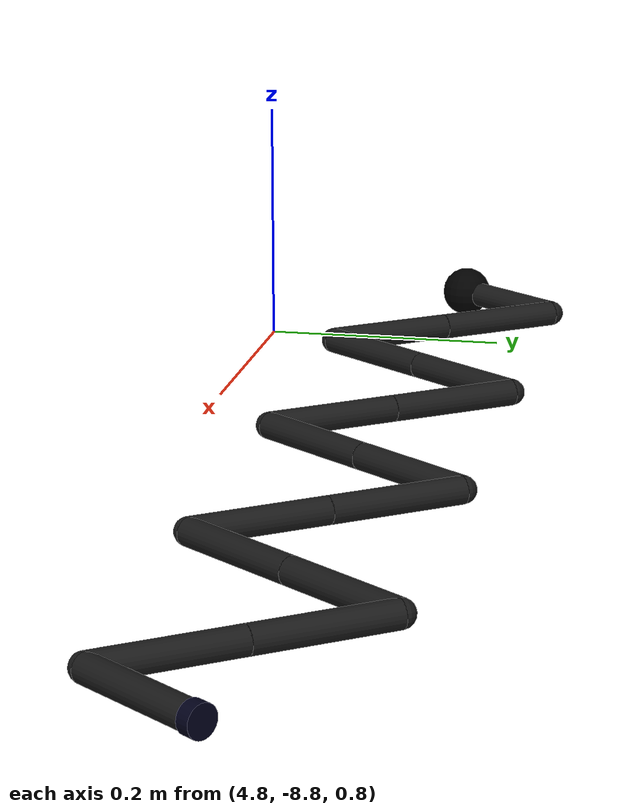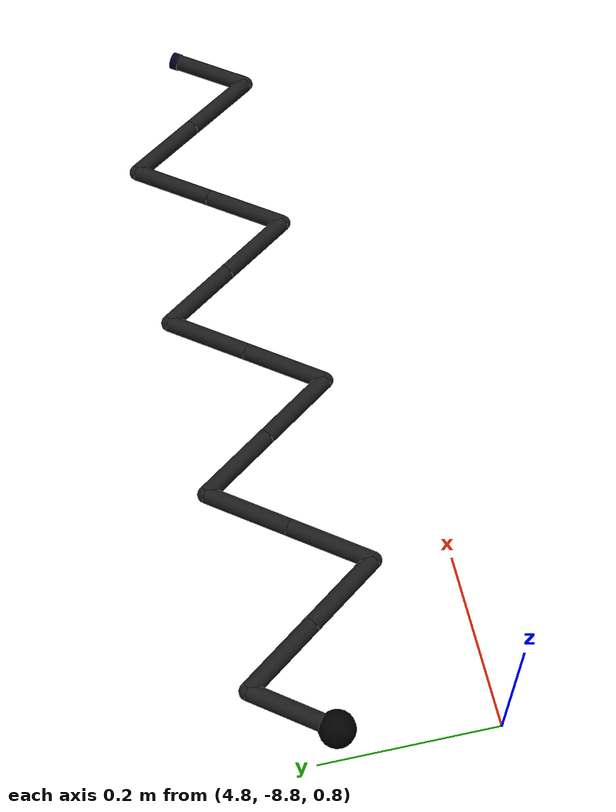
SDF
<sdf version="1.6">
 <world name="SRC_finals">
  <model name="solar_panel_cable">
   <self_collide>true</self_collide>
   <pose>4.8170462002983
    -8.62441469592094
    0.85
    0
    0
    6.123233995736766e-17</pose>
   <link name="link_0">
    <inertial><mass>0.05</mass><inertia><ixx>0.0001</ixx><iyy>0.0001</iyy><izz>0.0001</izz></inertia></inertial>
    <visual name="visual">
     <geometry><sphere><radius>0.02</radius></sphere></geometry>
     <material>
      <ambient>0 0 0 1</ambient>
      <emissive>0 0 0 1</emissive>
      <diffuse>0 0 0 1</diffuse>
      <specular>1 1 1 1</specular>
     </material>
    </visual>
   </link>
   <link name="link_1">
    <pose>0.0 0 0 0 1.5707963267948966 0.9424777960769379</pose>
    <inertial>
     <pose>0 0 0.05 0 0 0</pose>
     <mass>0.05</mass>
     <inertia><ixx>0.0001</ixx><iyy>0.0001</iyy><izz>0.0001</izz></inertia>
    </inertial>
    <collision name="cylinder">
     <pose>0 0 0.05 0 0 0</pose>
     <geometry><cylinder><length>0.1</length><radius>0.01</radius></cylinder></geometry>
     <surface>
      <contact><ode><kp>1e5</kp><kd>1</kd><max_vel>0.1</max_vel><min_depth>0.0015</min_depth></ode></contact>
      <friction><ode><mu>1.0</mu><mu2>1.0</mu2></ode></friction>
     </surface>
    </collision>
    <collision name="sphere">
     <geometry><sphere><radius>0.01</radius></sphere></geometry>
     <surface>
      <contact><ode><kp>1e5</kp><kd>1</kd><max_vel>0.1</max_vel><min_depth>0.0015</min_depth></ode></contact>
      <friction><ode><mu>1.0</mu><mu2>1.0</mu2></ode></friction>
     </surface>
    </collision>
    <visual name="cylinder">
     <pose>0 0 0.05 0 0 0</pose>
     <geometry><cylinder><length>0.1</length><radius>0.01</radius></cylinder></geometry>
     <material>
      <ambient>0 0 0 1</ambient>
      <emissive>0 0 0 1</emissive>
      <diffuse>0.1 0.1 0.1 1</diffuse>
      <specular>1 1 1 1</specular>
     </material>
    </visual>
    <visual name="sphere">
     <geometry><sphere><radius>0.01</radius></sphere></geometry>
     <material>
      <ambient>0 0 0 1</ambient>
      <emissive>0 0 0 1</emissive>
      <diffuse>0.1 0.1 0.1 1</diffuse>
      <specular>1 1 1 1</specular>
     </material>
    </visual>
   </link>
   <joint name="joint_1" type="universal">
    <child>link_1</child>
    <parent>link_0</parent>
    <axis>
     <xyz>0 1 0</xyz>
     <limit><lower>-1.5707963267948966</lower><upper>1.5707963267948966</upper></limit>
    </axis>
    <axis2>
     <xyz>-1 0 0</xyz>
     <limit><lower>-1.5707963267948966</lower><upper>1.5707963267948966</upper></limit>
    </axis2>
    <physics><ode><cfm_damping>1</cfm_damping></ode></physics>
   </joint>
   <link name="link_2">
    <pose>0.058778525229247314 0.08090169943749476 0 0 1.5707963267948966 -0.9424777960769379</pose>
    <inertial>
     <pose>0 0 0.05 0 0 0</pose>
     <mass>0.05</mass>
     <inertia><ixx>0.0001</ixx><iyy>0.0001</iyy><izz>0.0001</izz></inertia>
    </inertial>
    <collision name="cylinder">
     <pose>0 0 0.05 0 0 0</pose>
     <geometry><cylinder><length>0.1</length><radius>0.01</radius></cylinder></geometry>
     <surface>
      <contact><ode><kp>1e5</kp><kd>1</kd><max_vel>0.1</max_vel><min_depth>0.0015</min_depth></ode></contact>
      <friction><ode><mu>1.0</mu><mu2>1.0</mu2></ode></friction>
     </surface>
    </collision>
    <collision name="sphere">
     <geometry><sphere><radius>0.01</radius></sphere></geometry>
     <surface>
      <contact><ode><kp>1e5</kp><kd>1</kd><max_vel>0.1</max_vel><min_depth>0.0015</min_depth></ode></contact>
      <friction><ode><mu>1.0</mu><mu2>1.0</mu2></ode></friction>
     </surface>
    </collision>
    <visual name="cylinder">
     <pose>0 0 0.05 0 0 0</pose>
     <geometry><cylinder><length>0.1</length><radius>0.01</radius></cylinder></geometry>
     <material>
      <ambient>0 0 0 1</ambient>
      <emissive>0 0 0 1</emissive>
      <diffuse>0.1 0.1 0.1 1</diffuse>
      <specular>1 1 1 1</specular>
     </material>
    </visual>
    <visual name="sphere">
     <geometry><sphere><radius>0.01</radius></sphere></geometry>
     <material>
      <ambient>0 0 0 1</ambient>
      <emissive>0 0 0 1</emissive>
      <diffuse>0.1 0.1 0.1 1</diffuse>
      <specular>1 1 1 1</specular>
     </material>
    </visual>
   </link>
   <joint name="joint_2" type="universal">
    <child>link_2</child>
    <parent>link_1</parent>
    <axis>
     <xyz>0 1 0</xyz>
     <limit><lower>-1.5707963267948966</lower><upper>1.5707963267948966</upper></limit>
    </axis>
    <axis2>
     <xyz>-1 0 0</xyz>
     <limit><lower>-1.5707963267948966</lower><upper>1.5707963267948966</upper></limit>
    </axis2>
    <physics><ode><cfm_damping>1</cfm_damping></ode></physics>
   </joint>
   <link name="link_3">
    <pose>0.11755705045849463 0 0 0 1.5707963267948966 -0.9424777960769379</pose>
    <inertial>
     <pose>0 0 0.05 0 0 0</pose>
     <mass>0.05</mass>
     <inertia><ixx>0.0001</ixx><iyy>0.0001</iyy><izz>0.0001</izz></inertia>
    </inertial>
    <collision name="cylinder">
     <pose>0 0 0.05 0 0 0</pose>
     <geometry><cylinder><length>0.1</length><radius>0.01</radius></cylinder></geometry>
     <surface>
      <contact><ode><kp>1e5</kp><kd>1</kd><max_vel>0.1</max_vel><min_depth>0.0015</min_depth></ode></contact>
      <friction><ode><mu>1.0</mu><mu2>1.0</mu2></ode></friction>
     </surface>
    </collision>
    <collision name="sphere">
     <geometry><sphere><radius>0.01</radius></sphere></geometry>
     <surface>
      <contact><ode><kp>1e5</kp><kd>1</kd><max_vel>0.1</max_vel><min_depth>0.0015</min_depth></ode></contact>
      <friction><ode><mu>1.0</mu><mu2>1.0</mu2></ode></friction>
     </surface>
    </collision>
    <visual name="cylinder">
     <pose>0 0 0.05 0 0 0</pose>
     <geometry><cylinder><length>0.1</length><radius>0.01</radius></cylinder></geometry>
     <material>
      <ambient>0 0 0 1</ambient>
      <emissive>0 0 0 1</emissive>
      <diffuse>0.1 0.1 0.1 1</diffuse>
      <specular>1 1 1 1</specular>
     </material>
    </visual>
    <visual name="sphere">
     <geometry><sphere><radius>0.01</radius></sphere></geometry>
     <material>
      <ambient>0 0 0 1</ambient>
      <emissive>0 0 0 1</emissive>
      <diffuse>0.1 0.1 0.1 1</diffuse>
      <specular>1 1 1 1</specular>
     </material>
    </visual>
   </link>
   <joint name="joint_3" type="universal">
    <child>link_3</child>
    <parent>link_2</parent>
    <axis>
     <xyz>0 1 0</xyz>
     <limit><lower>-1.5707963267948966</lower><upper>1.5707963267948966</upper></limit>
    </axis>
    <axis2>
     <xyz>-1 0 0</xyz>
     <limit><lower>-1.5707963267948966</lower><upper>1.5707963267948966</upper></limit>
    </axis2>
    <physics><ode><cfm_damping>1</cfm_damping></ode></physics>
   </joint>
   <link name="link_4">
    <pose>0.17633557568774197 -0.08090169943749476 0 0 1.5707963267948966 0.9424777960769379</pose>
    <inertial>
     <pose>0 0 0.05 0 0 0</pose>
     <mass>0.05</mass>
     <inertia><ixx>0.0001</ixx><iyy>0.0001</iyy><izz>0.0001</izz></inertia>
    </inertial>
    <collision name="cylinder">
     <pose>0 0 0.05 0 0 0</pose>
     <geometry><cylinder><length>0.1</length><radius>0.01</radius></cylinder></geometry>
     <surface>
      <contact><ode><kp>1e5</kp><kd>1</kd><max_vel>0.1</max_vel><min_depth>0.0015</min_depth></ode></contact>
      <friction><ode><mu>1.0</mu><mu2>1.0</mu2></ode></friction>
     </surface>
    </collision>
    <collision name="sphere">
     <geometry><sphere><radius>0.01</radius></sphere></geometry>
     <surface>
      <contact><ode><kp>1e5</kp><kd>1</kd><max_vel>0.1</max_vel><min_depth>0.0015</min_depth></ode></contact>
      <friction><ode><mu>1.0</mu><mu2>1.0</mu2></ode></friction>
     </surface>
    </collision>
    <visual name="cylinder">
     <pose>0 0 0.05 0 0 0</pose>
     <geometry><cylinder><length>0.1</length><radius>0.01</radius></cylinder></geometry>
     <material>
      <ambient>0 0 0 1</ambient>
      <emissive>0 0 0 1</emissive>
      <diffuse>0.1 0.1 0.1 1</diffuse>
      <specular>1 1 1 1</specular>
     </material>
    </visual>
    <visual name="sphere">
     <geometry><sphere><radius>0.01</radius></sphere></geometry>
     <material>
      <ambient>0 0 0 1</ambient>
      <emissive>0 0 0 1</emissive>
      <diffuse>0.1 0.1 0.1 1</diffuse>
      <specular>1 1 1 1</specular>
     </material>
    </visual>
   </link>
   <joint name="joint_4" type="universal">
    <child>link_4</child>
    <parent>link_3</parent>
    <axis>
     <xyz>0 1 0</xyz>
     <limit><lower>-1.5707963267948966</lower><upper>1.5707963267948966</upper></limit>
    </axis>
    <axis2>
     <xyz>-1 0 0</xyz>
     <limit><lower>-1.5707963267948966</lower><upper>1.5707963267948966</upper></limit>
    </axis2>
    <physics><ode><cfm_damping>1</cfm_damping></ode></physics>
   </joint>
   <link name="link_5">
    <pose>0.23511410091698925 0 0 0 1.5707963267948966 0.9424777960769379</pose>
    <inertial>
     <pose>0 0 0.05 0 0 0</pose>
     <mass>0.05</mass>
     <inertia><ixx>0.0001</ixx><iyy>0.0001</iyy><izz>0.0001</izz></inertia>
    </inertial>
    <collision name="cylinder">
     <pose>0 0 0.05 0 0 0</pose>
     <geometry><cylinder><length>0.1</length><radius>0.01</radius></cylinder></geometry>
     <surface>
      <contact><ode><kp>1e5</kp><kd>1</kd><max_vel>0.1</max_vel><min_depth>0.0015</min_depth></ode></contact>
      <friction><ode><mu>1.0</mu><mu2>1.0</mu2></ode></friction>
     </surface>
    </collision>
    <collision name="sphere">
     <geometry><sphere><radius>0.01</radius></sphere></geometry>
     <surface>
      <contact><ode><kp>1e5</kp><kd>1</kd><max_vel>0.1</max_vel><min_depth>0.0015</min_depth></ode></contact>
      <friction><ode><mu>1.0</mu><mu2>1.0</mu2></ode></friction>
     </surface>
    </collision>
    <visual name="cylinder">
     <pose>0 0 0.05 0 0 0</pose>
     <geometry><cylinder><length>0.1</length><radius>0.01</radius></cylinder></geometry>
     <material>
      <ambient>0 0 0 1</ambient>
      <emissive>0 0 0 1</emissive>
      <diffuse>0.1 0.1 0.1 1</diffuse>
      <specular>1 1 1 1</specular>
     </material>
    </visual>
    <visual name="sphere">
     <geometry><sphere><radius>0.01</radius></sphere></geometry>
     <material>
      <ambient>0 0 0 1</ambient>
      <emissive>0 0 0 1</emissive>
      <diffuse>0.1 0.1 0.1 1</diffuse>
      <specular>1 1 1 1</specular>
     </material>
    </visual>
   </link>
   <joint name="joint_5" type="universal">
    <child>link_5</child>
    <parent>link_4</parent>
    <axis>
     <xyz>0 1 0</xyz>
     <limit><lower>-1.5707963267948966</lower><upper>1.5707963267948966</upper></limit>
    </axis>
    <axis2>
     <xyz>-1 0 0</xyz>
     <limit><lower>-1.5707963267948966</lower><upper>1.5707963267948966</upper></limit>
    </axis2>
    <physics><ode><cfm_damping>1</cfm_damping></ode></physics>
   </joint>
   <link name="link_6">
    <pose>0.29389262614623657 0.08090169943749476 0 0 1.5707963267948966 -0.9424777960769379</pose>
    <inertial>
     <pose>0 0 0.05 0 0 0</pose>
     <mass>0.05</mass>
     <inertia><ixx>0.0001</ixx><iyy>0.0001</iyy><izz>0.0001</izz></inertia>
    </inertial>
    <collision name="cylinder">
     <pose>0 0 0.05 0 0 0</pose>
     <geometry><cylinder><length>0.1</length><radius>0.01</radius></cylinder></geometry>
     <surface>
      <contact><ode><kp>1e5</kp><kd>1</kd><max_vel>0.1</max_vel><min_depth>0.0015</min_depth></ode></contact>
      <friction><ode><mu>1.0</mu><mu2>1.0</mu2></ode></friction>
     </surface>
    </collision>
    <collision name="sphere">
     <geometry><sphere><radius>0.01</radius></sphere></geometry>
     <surface>
      <contact><ode><kp>1e5</kp><kd>1</kd><max_vel>0.1</max_vel><min_depth>0.0015</min_depth></ode></contact>
      <friction><ode><mu>1.0</mu><mu2>1.0</mu2></ode></friction>
     </surface>
    </collision>
    <visual name="cylinder">
     <pose>0 0 0.05 0 0 0</pose>
     <geometry><cylinder><length>0.1</length><radius>0.01</radius></cylinder></geometry>
     <material>
      <ambient>0 0 0 1</ambient>
      <emissive>0 0 0 1</emissive>
      <diffuse>0.1 0.1 0.1 1</diffuse>
      <specular>1 1 1 1</specular>
     </material>
    </visual>
    <visual name="sphere">
     <geometry><sphere><radius>0.01</radius></sphere></geometry>
     <material>
      <ambient>0 0 0 1</ambient>
      <emissive>0 0 0 1</emissive>
      <diffuse>0.1 0.1 0.1 1</diffuse>
      <specular>1 1 1 1</specular>
     </material>
    </visual>
   </link>
   <joint name="joint_6" type="universal">
    <child>link_6</child>
    <parent>link_5</parent>
    <axis>
     <xyz>0 1 0</xyz>
     <limit><lower>-1.5707963267948966</lower><upper>1.5707963267948966</upper></limit>
    </axis>
    <axis2>
     <xyz>-1 0 0</xyz>
     <limit><lower>-1.5707963267948966</lower><upper>1.5707963267948966</upper></limit>
    </axis2>
    <physics><ode><cfm_damping>1</cfm_damping></ode></physics>
   </joint>
   <link name="link_7">
    <pose>0.35267115137548394 0 0 0 1.5707963267948966 -0.9424777960769379</pose>
    <inertial>
     <pose>0 0 0.05 0 0 0</pose>
     <mass>0.05</mass>
     <inertia><ixx>0.0001</ixx><iyy>0.0001</iyy><izz>0.0001</izz></inertia>
    </inertial>
    <collision name="cylinder">
     <pose>0 0 0.05 0 0 0</pose>
     <geometry><cylinder><length>0.1</length><radius>0.01</radius></cylinder></geometry>
     <surface>
      <contact><ode><kp>1e5</kp><kd>1</kd><max_vel>0.1</max_vel><min_depth>0.0015</min_depth></ode></contact>
      <friction><ode><mu>1.0</mu><mu2>1.0</mu2></ode></friction>
     </surface>
    </collision>
    <collision name="sphere">
     <geometry><sphere><radius>0.01</radius></sphere></geometry>
     <surface>
      <contact><ode><kp>1e5</kp><kd>1</kd><max_vel>0.1</max_vel><min_depth>0.0015</min_depth></ode></contact>
      <friction><ode><mu>1.0</mu><mu2>1.0</mu2></ode></friction>
     </surface>
    </collision>
    <visual name="cylinder">
     <pose>0 0 0.05 0 0 0</pose>
     <geometry><cylinder><length>0.1</length><radius>0.01</radius></cylinder></geometry>
     <material>
      <ambient>0 0 0 1</ambient>
      <emissive>0 0 0 1</emissive>
      <diffuse>0.1 0.1 0.1 1</diffuse>
      <specular>1 1 1 1</specular>
     </material>
    </visual>
    <visual name="sphere">
     <geometry><sphere><radius>0.01</radius></sphere></geometry>
     <material>
      <ambient>0 0 0 1</ambient>
      <emissive>0 0 0 1</emissive>
      <diffuse>0.1 0.1 0.1 1</diffuse>
      <specular>1 1 1 1</specular>
     </material>
    </visual>
   </link>
   <joint name="joint_7" type="universal">
    <child>link_7</child>
    <parent>link_6</parent>
    <axis>
     <xyz>0 1 0</xyz>
     <limit><lower>-1.5707963267948966</lower><upper>1.5707963267948966</upper></limit>
    </axis>
    <axis2>
     <xyz>-1 0 0</xyz>
     <limit><lower>-1.5707963267948966</lower><upper>1.5707963267948966</upper></limit>
    </axis2>
    <physics><ode><cfm_damping>1</cfm_damping></ode></physics>
   </joint>
   <link name="link_8">
    <pose>0.41144967660473125 -0.08090169943749476 0 0 1.5707963267948966 0.9424777960769379</pose>
    <inertial>
     <pose>0 0 0.05 0 0 0</pose>
     <mass>0.05</mass>
     <inertia><ixx>0.0001</ixx><iyy>0.0001</iyy><izz>0.0001</izz></inertia>
    </inertial>
    <collision name="cylinder">
     <pose>0 0 0.05 0 0 0</pose>
     <geometry><cylinder><length>0.1</length><radius>0.01</radius></cylinder></geometry>
     <surface>
      <contact><ode><kp>1e5</kp><kd>1</kd><max_vel>0.1</max_vel><min_depth>0.0015</min_depth></ode></contact>
      <friction><ode><mu>1.0</mu><mu2>1.0</mu2></ode></friction>
     </surface>
    </collision>
    <collision name="sphere">
     <geometry><sphere><radius>0.01</radius></sphere></geometry>
     <surface>
      <contact><ode><kp>1e5</kp><kd>1</kd><max_vel>0.1</max_vel><min_depth>0.0015</min_depth></ode></contact>
      <friction><ode><mu>1.0</mu><mu2>1.0</mu2></ode></friction>
     </surface>
    </collision>
    <visual name="cylinder">
     <pose>0 0 0.05 0 0 0</pose>
     <geometry><cylinder><length>0.1</length><radius>0.01</radius></cylinder></geometry>
     <material>
      <ambient>0 0 0 1</ambient>
      <emissive>0 0 0 1</emissive>
      <diffuse>0.1 0.1 0.1 1</diffuse>
      <specular>1 1 1 1</specular>
     </material>
    </visual>
    <visual name="sphere">
     <geometry><sphere><radius>0.01</radius></sphere></geometry>
     <material>
      <ambient>0 0 0 1</ambient>
      <emissive>0 0 0 1</emissive>
      <diffuse>0.1 0.1 0.1 1</diffuse>
      <specular>1 1 1 1</specular>
     </material>
    </visual>
   </link>
   <joint name="joint_8" type="universal">
    <child>link_8</child>
    <parent>link_7</parent>
    <axis>
     <xyz>0 1 0</xyz>
     <limit><lower>-1.5707963267948966</lower><upper>1.5707963267948966</upper></limit>
    </axis>
    <axis2>
     <xyz>-1 0 0</xyz>
     <limit><lower>-1.5707963267948966</lower><upper>1.5707963267948966</upper></limit>
    </axis2>
    <physics><ode><cfm_damping>1</cfm_damping></ode></physics>
   </joint>
   <link name="link_9">
    <pose>0.4702282018339785 0 0 0 1.5707963267948966 0.9424777960769379</pose>
    <inertial>
     <pose>0 0 0.05 0 0 0</pose>
     <mass>0.05</mass>
     <inertia><ixx>0.0001</ixx><iyy>0.0001</iyy><izz>0.0001</izz></inertia>
    </inertial>
    <collision name="cylinder">
     <pose>0 0 0.05 0 0 0</pose>
     <geometry><cylinder><length>0.1</length><radius>0.01</radius></cylinder></geometry>
     <surface>
      <contact><ode><kp>1e5</kp><kd>1</kd><max_vel>0.1</max_vel><min_depth>0.0015</min_depth></ode></contact>
      <friction><ode><mu>1.0</mu><mu2>1.0</mu2></ode></friction>
     </surface>
    </collision>
    <collision name="sphere">
     <geometry><sphere><radius>0.01</radius></sphere></geometry>
     <surface>
      <contact><ode><kp>1e5</kp><kd>1</kd><max_vel>0.1</max_vel><min_depth>0.0015</min_depth></ode></contact>
      <friction><ode><mu>1.0</mu><mu2>1.0</mu2></ode></friction>
     </surface>
    </collision>
    <visual name="cylinder">
     <pose>0 0 0.05 0 0 0</pose>
     <geometry><cylinder><length>0.1</length><radius>0.01</radius></cylinder></geometry>
     <material>
      <ambient>0 0 0 1</ambient>
      <emissive>0 0 0 1</emissive>
      <diffuse>0.1 0.1 0.1 1</diffuse>
      <specular>1 1 1 1</specular>
     </material>
    </visual>
    <visual name="sphere">
     <geometry><sphere><radius>0.01</radius></sphere></geometry>
     <material>
      <ambient>0 0 0 1</ambient>
      <emissive>0 0 0 1</emissive>
      <diffuse>0.1 0.1 0.1 1</diffuse>
      <specular>1 1 1 1</specular>
     </material>
    </visual>
   </link>
   <joint name="joint_9" type="universal">
    <child>link_9</child>
    <parent>link_8</parent>
    <axis>
     <xyz>0 1 0</xyz>
     <limit><lower>-1.5707963267948966</lower><upper>1.5707963267948966</upper></limit>
    </axis>
    <axis2>
     <xyz>-1 0 0</xyz>
     <limit><lower>-1.5707963267948966</lower><upper>1.5707963267948966</upper></limit>
    </axis2>
    <physics><ode><cfm_damping>1</cfm_damping></ode></physics>
   </joint>
   <link name="link_10">
    <pose>0.5290067270632258 0.08090169943749476 0 0 1.5707963267948966 -0.9424777960769379</pose>
    <inertial>
     <pose>0 0 0.05 0 0 0</pose>
     <mass>0.05</mass>
     <inertia><ixx>0.0001</ixx><iyy>0.0001</iyy><izz>0.0001</izz></inertia>
    </inertial>
    <collision name="cylinder">
     <pose>0 0 0.05 0 0 0</pose>
     <geometry><cylinder><length>0.1</length><radius>0.01</radius></cylinder></geometry>
     <surface>
      <contact><ode><kp>1e5</kp><kd>1</kd><max_vel>0.1</max_vel><min_depth>0.0015</min_depth></ode></contact>
      <friction><ode><mu>1.0</mu><mu2>1.0</mu2></ode></friction>
     </surface>
    </collision>
    <collision name="sphere">
     <geometry><sphere><radius>0.01</radius></sphere></geometry>
     <surface>
      <contact><ode><kp>1e5</kp><kd>1</kd><max_vel>0.1</max_vel><min_depth>0.0015</min_depth></ode></contact>
      <friction><ode><mu>1.0</mu><mu2>1.0</mu2></ode></friction>
     </surface>
    </collision>
    <visual name="cylinder">
     <pose>0 0 0.05 0 0 0</pose>
     <geometry><cylinder><length>0.1</length><radius>0.01</radius></cylinder></geometry>
     <material>
      <ambient>0 0 0 1</ambient>
      <emissive>0 0 0 1</emissive>
      <diffuse>0.1 0.1 0.1 1</diffuse>
      <specular>1 1 1 1</specular>
     </material>
    </visual>
    <visual name="sphere">
     <geometry><sphere><radius>0.01</radius></sphere></geometry>
     <material>
      <ambient>0 0 0 1</ambient>
      <emissive>0 0 0 1</emissive>
      <diffuse>0.1 0.1 0.1 1</diffuse>
      <specular>1 1 1 1</specular>
     </material>
    </visual>
   </link>
   <joint name="joint_10" type="universal">
    <child>link_10</child>
    <parent>link_9</parent>
    <axis>
     <xyz>0 1 0</xyz>
     <limit><lower>-1.5707963267948966</lower><upper>1.5707963267948966</upper></limit>
    </axis>
    <axis2>
     <xyz>-1 0 0</xyz>
     <limit><lower>-1.5707963267948966</lower><upper>1.5707963267948966</upper></limit>
    </axis2>
    <physics><ode><cfm_damping>1</cfm_damping></ode></physics>
   </joint>
   <link name="link_11">
    <pose>0.5877852522924731 0 0 0 1.5707963267948966 -0.9424777960769379</pose>
    <inertial>
     <pose>0 0 0.05 0 0 0</pose>
     <mass>0.05</mass>
     <inertia><ixx>0.0001</ixx><iyy>0.0001</iyy><izz>0.0001</izz></inertia>
    </inertial>
    <collision name="cylinder">
     <pose>0 0 0.05 0 0 0</pose>
     <geometry><cylinder><length>0.1</length><radius>0.01</radius></cylinder></geometry>
     <surface>
      <contact><ode><kp>1e5</kp><kd>1</kd><max_vel>0.1</max_vel><min_depth>0.0015</min_depth></ode></contact>
      <friction><ode><mu>1.0</mu><mu2>1.0</mu2></ode></friction>
     </surface>
    </collision>
    <collision name="sphere">
     <geometry><sphere><radius>0.01</radius></sphere></geometry>
     <surface>
      <contact><ode><kp>1e5</kp><kd>1</kd><max_vel>0.1</max_vel><min_depth>0.0015</min_depth></ode></contact>
      <friction><ode><mu>1.0</mu><mu2>1.0</mu2></ode></friction>
     </surface>
    </collision>
    <visual name="cylinder">
     <pose>0 0 0.05 0 0 0</pose>
     <geometry><cylinder><length>0.1</length><radius>0.01</radius></cylinder></geometry>
     <material>
      <ambient>0 0 0 1</ambient>
      <emissive>0 0 0 1</emissive>
      <diffuse>0.1 0.1 0.1 1</diffuse>
      <specular>1 1 1 1</specular>
     </material>
    </visual>
    <visual name="sphere">
     <geometry><sphere><radius>0.01</radius></sphere></geometry>
     <material>
      <ambient>0 0 0 1</ambient>
      <emissive>0 0 0 1</emissive>
      <diffuse>0.1 0.1 0.1 1</diffuse>
      <specular>1 1 1 1</specular>
     </material>
    </visual>
   </link>
   <joint name="joint_11" type="universal">
    <child>link_11</child>
    <parent>link_10</parent>
    <axis>
     <xyz>0 1 0</xyz>
     <limit><lower>-1.5707963267948966</lower><upper>1.5707963267948966</upper></limit>
    </axis>
    <axis2>
     <xyz>-1 0 0</xyz>
     <limit><lower>-1.5707963267948966</lower><upper>1.5707963267948966</upper></limit>
    </axis2>
    <physics><ode><cfm_damping>1</cfm_damping></ode></physics>
   </joint>
   <link name="link_12">
    <pose>0.6465637775217205 -0.08090169943749476 0 0 1.5707963267948966 0.9424777960769379</pose>
    <inertial>
     <pose>0 0 0.05 0 0 0</pose>
     <mass>0.05</mass>
     <inertia><ixx>0.0001</ixx><iyy>0.0001</iyy><izz>0.0001</izz></inertia>
    </inertial>
    <collision name="cylinder">
     <pose>0 0 0.05 0 0 0</pose>
     <geometry><cylinder><length>0.1</length><radius>0.01</radius></cylinder></geometry>
     <surface>
      <contact><ode><kp>1e5</kp><kd>1</kd><max_vel>0.1</max_vel><min_depth>0.0015</min_depth></ode></contact>
      <friction><ode><mu>1.0</mu><mu2>1.0</mu2></ode></friction>
     </surface>
    </collision>
    <collision name="sphere">
     <geometry><sphere><radius>0.01</radius></sphere></geometry>
     <surface>
      <contact><ode><kp>1e5</kp><kd>1</kd><max_vel>0.1</max_vel><min_depth>0.0015</min_depth></ode></contact>
      <friction><ode><mu>1.0</mu><mu2>1.0</mu2></ode></friction>
     </surface>
    </collision>
    <visual name="cylinder">
     <pose>0 0 0.05 0 0 0</pose>
     <geometry><cylinder><length>0.1</length><radius>0.01</radius></cylinder></geometry>
     <material>
      <ambient>0 0 0 1</ambient>
      <emissive>0 0 0 1</emissive>
      <diffuse>0.1 0.1 0.1 1</diffuse>
      <specular>1 1 1 1</specular>
     </material>
    </visual>
    <visual name="sphere">
     <geometry><sphere><radius>0.01</radius></sphere></geometry>
     <material>
      <ambient>0 0 0 1</ambient>
      <emissive>0 0 0 1</emissive>
      <diffuse>0.1 0.1 0.1 1</diffuse>
      <specular>1 1 1 1</specular>
     </material>
    </visual>
   </link>
   <joint name="joint_12" type="universal">
    <child>link_12</child>
    <parent>link_11</parent>
    <axis>
     <xyz>0 1 0</xyz>
     <limit><lower>-1.5707963267948966</lower><upper>1.5707963267948966</upper></limit>
    </axis>
    <axis2>
     <xyz>-1 0 0</xyz>
     <limit><lower>-1.5707963267948966</lower><upper>1.5707963267948966</upper></limit>
    </axis2>
    <physics><ode><cfm_damping>1</cfm_damping></ode></physics>
   </joint>
   <link name="link_13">
    <pose>0.7053423027509679 0 0 0 1.5707963267948966 0.9424777960769379</pose>
    <inertial>
     <pose>0 0 0.05 0 0 0</pose>
     <mass>0.05</mass>
     <inertia><ixx>0.0001</ixx><iyy>0.0001</iyy><izz>0.0001</izz></inertia>
    </inertial>
    <collision name="cylinder">
     <pose>0 0 0.05 0 0 0</pose>
     <geometry><cylinder><length>0.1</length><radius>0.01</radius></cylinder></geometry>
     <surface>
      <contact><ode><kp>1e5</kp><kd>1</kd><max_vel>0.1</max_vel><min_depth>0.0015</min_depth></ode></contact>
      <friction><ode><mu>1.0</mu><mu2>1.0</mu2></ode></friction>
     </surface>
    </collision>
    <collision name="sphere">
     <geometry><sphere><radius>0.01</radius></sphere></geometry>
     <surface>
      <contact><ode><kp>1e5</kp><kd>1</kd><max_vel>0.1</max_vel><min_depth>0.0015</min_depth></ode></contact>
      <friction><ode><mu>1.0</mu><mu2>1.0</mu2></ode></friction>
     </surface>
    </collision>
    <visual name="cylinder">
     <pose>0 0 0.05 0 0 0</pose>
     <geometry><cylinder><length>0.1</length><radius>0.01</radius></cylinder></geometry>
     <material>
      <ambient>0 0 0 1</ambient>
      <emissive>0 0 0 1</emissive>
      <diffuse>0.1 0.1 0.1 1</diffuse>
      <specular>1 1 1 1</specular>
     </material>
    </visual>
    <visual name="sphere">
     <geometry><sphere><radius>0.01</radius></sphere></geometry>
     <material>
      <ambient>0 0 0 1</ambient>
      <emissive>0 0 0 1</emissive>
      <diffuse>0.1 0.1 0.1 1</diffuse>
      <specular>1 1 1 1</specular>
     </material>
    </visual>
   </link>
   <joint name="joint_13" type="universal">
    <child>link_13</child>
    <parent>link_12</parent>
    <axis>
     <xyz>0 1 0</xyz>
     <limit><lower>-1.5707963267948966</lower><upper>1.5707963267948966</upper></limit>
    </axis>
    <axis2>
     <xyz>-1 0 0</xyz>
     <limit><lower>-1.5707963267948966</lower><upper>1.5707963267948966</upper></limit>
    </axis2>
    <physics><ode><cfm_damping>1</cfm_damping></ode></physics>
   </joint>
   <link name="link_14">
    <pose>0.7641208279802151 0.08090169943749476 0 0 1.5707963267948966 -0.9424777960769379</pose>
    <inertial>
     <pose>0 0 0.05 0 0 0</pose>
     <mass>0.05</mass>
     <inertia><ixx>0.0001</ixx><iyy>0.0001</iyy><izz>0.0001</izz></inertia>
    </inertial>
    <collision name="cylinder">
     <pose>0 0 0.05 0 0 0</pose>
     <geometry><cylinder><length>0.1</length><radius>0.01</radius></cylinder></geometry>
     <surface>
      <contact><ode><kp>1e5</kp><kd>1</kd><max_vel>0.1</max_vel><min_depth>0.0015</min_depth></ode></contact>
      <friction><ode><mu>1.0</mu><mu2>1.0</mu2></ode></friction>
     </surface>
    </collision>
    <collision name="sphere">
     <geometry><sphere><radius>0.01</radius></sphere></geometry>
     <surface>
      <contact><ode><kp>1e5</kp><kd>1</kd><max_vel>0.1</max_vel><min_depth>0.0015</min_depth></ode></contact>
      <friction><ode><mu>1.0</mu><mu2>1.0</mu2></ode></friction>
     </surface>
    </collision>
    <visual name="cylinder">
     <pose>0 0 0.05 0 0 0</pose>
     <geometry><cylinder><length>0.1</length><radius>0.01</radius></cylinder></geometry>
     <material>
      <ambient>0 0 0 1</ambient>
      <emissive>0 0 0 1</emissive>
      <diffuse>0.1 0.1 0.1 1</diffuse>
      <specular>1 1 1 1</specular>
     </material>
    </visual>
    <visual name="sphere">
     <geometry><sphere><radius>0.01</radius></sphere></geometry>
     <material>
      <ambient>0 0 0 1</ambient>
      <emissive>0 0 0 1</emissive>
      <diffuse>0.1 0.1 0.1 1</diffuse>
      <specular>1 1 1 1</specular>
     </material>
    </visual>
   </link>
   <joint name="joint_14" type="universal">
    <child>link_14</child>
    <parent>link_13</parent>
    <axis>
     <xyz>0 1 0</xyz>
     <limit><lower>-1.5707963267948966</lower><upper>1.5707963267948966</upper></limit>
    </axis>
    <axis2>
     <xyz>-1 0 0</xyz>
     <limit><lower>-1.5707963267948966</lower><upper>1.5707963267948966</upper></limit>
    </axis2>
    <physics><ode><cfm_damping>1</cfm_damping></ode></physics>
   </joint>
   <link name="link_15">
    <pose>0.8228993532094625 0 0 0 1.5707963267948966 -0.9424777960769379</pose>
    <inertial>
     <pose>0 0 0.05 0 0 0</pose>
     <mass>0.05</mass>
     <inertia><ixx>0.0001</ixx><iyy>0.0001</iyy><izz>0.0001</izz></inertia>
    </inertial>
    <collision name="cylinder">
     <pose>0 0 0.05 0 0 0</pose>
     <geometry><cylinder><length>0.1</length><radius>0.01</radius></cylinder></geometry>
     <surface>
      <contact><ode><kp>1e5</kp><kd>1</kd><max_vel>0.1</max_vel><min_depth>0.0015</min_depth></ode></contact>
      <friction><ode><mu>1.0</mu><mu2>1.0</mu2></ode></friction>
     </surface>
    </collision>
    <collision name="sphere">
     <geometry><sphere><radius>0.01</radius></sphere></geometry>
     <surface>
      <contact><ode><kp>1e5</kp><kd>1</kd><max_vel>0.1</max_vel><min_depth>0.0015</min_depth></ode></contact>
      <friction><ode><mu>1.0</mu><mu2>1.0</mu2></ode></friction>
     </surface>
    </collision>
    <visual name="cylinder">
     <pose>0 0 0.05 0 0 0</pose>
     <geometry><cylinder><length>0.1</length><radius>0.01</radius></cylinder></geometry>
     <material>
      <ambient>0 0 0 1</ambient>
      <emissive>0 0 0 1</emissive>
      <diffuse>0.1 0.1 0.1 1</diffuse>
      <specular>1 1 1 1</specular>
     </material>
    </visual>
    <visual name="sphere">
     <geometry><sphere><radius>0.01</radius></sphere></geometry>
     <material>
      <ambient>0 0 0 1</ambient>
      <emissive>0 0 0 1</emissive>
      <diffuse>0.1 0.1 0.1 1</diffuse>
      <specular>1 1 1 1</specular>
     </material>
    </visual>
   </link>
   <joint name="joint_15" type="universal">
    <child>link_15</child>
    <parent>link_14</parent>
    <axis>
     <xyz>0 1 0</xyz>
     <limit><lower>-1.5707963267948966</lower><upper>1.5707963267948966</upper></limit>
    </axis>
    <axis2>
     <xyz>-1 0 0</xyz>
     <limit><lower>-1.5707963267948966</lower><upper>1.5707963267948966</upper></limit>
    </axis2>
    <physics><ode><cfm_damping>1</cfm_damping></ode></physics>
   </joint>
   <link name="link_16">
    <pose>0.8816778784387097 -0.08090169943749476 0 0 1.5707963267948966 0.9424777960769379</pose>
    <inertial>
     <pose>0 0 0.05 0 0 0</pose>
     <mass>0.05</mass>
     <inertia><ixx>0.0001</ixx><iyy>0.0001</iyy><izz>0.0001</izz></inertia>
    </inertial>
    <collision name="cylinder">
     <pose>0 0 0.05 0 0 0</pose>
     <geometry><cylinder><length>0.1</length><radius>0.01</radius></cylinder></geometry>
     <surface>
      <contact><ode><kp>1e5</kp><kd>1</kd><max_vel>0.1</max_vel><min_depth>0.0015</min_depth></ode></contact>
      <friction><ode><mu>1.0</mu><mu2>1.0</mu2></ode></friction>
     </surface>
    </collision>
    <collision name="sphere">
     <geometry><sphere><radius>0.01</radius></sphere></geometry>
     <surface>
      <contact><ode><kp>1e5</kp><kd>1</kd><max_vel>0.1</max_vel><min_depth>0.0015</min_depth></ode></contact>
      <friction><ode><mu>1.0</mu><mu2>1.0</mu2></ode></friction>
     </surface>
    </collision>
    <visual name="cylinder">
     <pose>0 0 0.05 0 0 0</pose>
     <geometry><cylinder><length>0.1</length><radius>0.01</radius></cylinder></geometry>
     <material>
      <ambient>0 0 0 1</ambient>
      <emissive>0 0 0 1</emissive>
      <diffuse>0.1 0.1 0.1 1</diffuse>
      <specular>1 1 1 1</specular>
     </material>
    </visual>
    <visual name="sphere">
     <geometry><sphere><radius>0.01</radius></sphere></geometry>
     <material>
      <ambient>0 0 0 1</ambient>
      <emissive>0 0 0 1</emissive>
      <diffuse>0.1 0.1 0.1 1</diffuse>
      <specular>1 1 1 1</specular>
     </material>
    </visual>
    <collision name="plug_collision">
     <pose>0 0 0.1 0 0 0</pose>
     <geometry>
      <cylinder><length>0.010000000000000002</length><radius>0.011000000000000001</radius></cylinder>
     </geometry>
     <surface>
      <contact><ode><kp>1e5</kp><kd>1</kd><max_vel>0.1</max_vel><min_depth>0.0015</min_depth></ode></contact>
      <friction><ode><mu>1.0</mu><mu2>1.0</mu2></ode></friction>
     </surface>
    </collision>
    <visual name="plug_visual">
     <pose>0 0 0.1 0 0 0</pose>
     <geometry>
      <cylinder><length>0.010000000000000002</length><radius>0.011000000000000001</radius></cylinder>
     </geometry>
     <material>
      <ambient>0 0 0.3 1</ambient>
      <emissive>0 0 0.2 1</emissive>
      <diffuse>0 0 0.1 1</diffuse>
      <specular>1 1 1 1</specular>
     </material>
    </visual>
    <sensor name="tip_sensor" type="contact">
     <contact>
      <collision>plug_collision</collision>
      <collision>cylinder</collision>
      <collision>sphere</collision>
     </contact>
    </sensor>
   </link>
   <joint name="joint_16" type="universal">
    <child>link_16</child>
    <parent>link_15</parent>
    <axis>
     <xyz>0 1 0</xyz>
     <limit><lower>-1.5707963267948966</lower><upper>1.5707963267948966</upper></limit>
    </axis>
    <axis2>
     <xyz>-1 0 0</xyz>
     <limit><lower>-1.5707963267948966</lower><upper>1.5707963267948966</upper></limit>
    </axis2>
    <physics><ode><cfm_damping>1</cfm_damping></ode></physics>
   </joint>
   <joint name="world" type="fixed"><child>link_0</child><parent>world</parent></joint>
   <plugin name="touch_valkyrie_cable" filename="libTouchPlugin.so">
    <sensor>tip_sensor</sensor>
    <target>valkyrie</target>
    <time>0.5</time>
    <namespace>task2/checkpoint4</namespace>
   </plugin>
  </model>
 </world>
</sdf>
